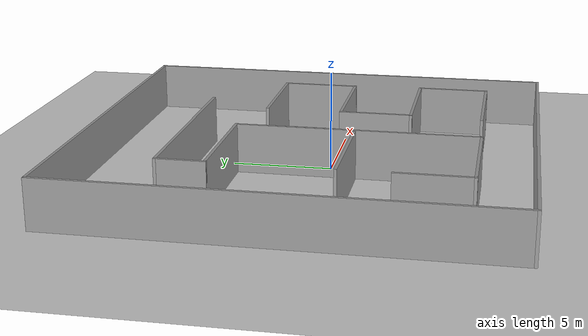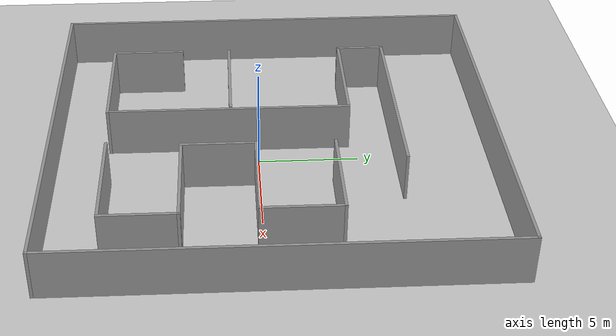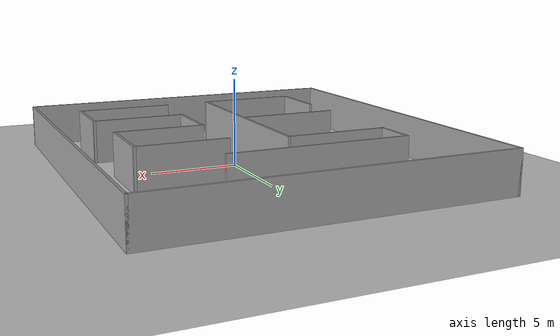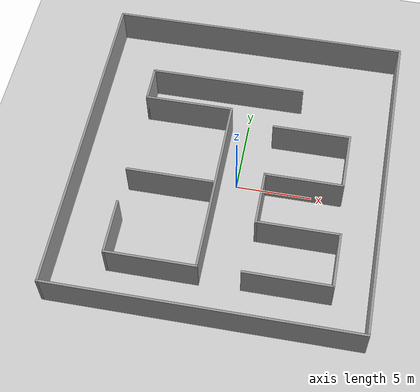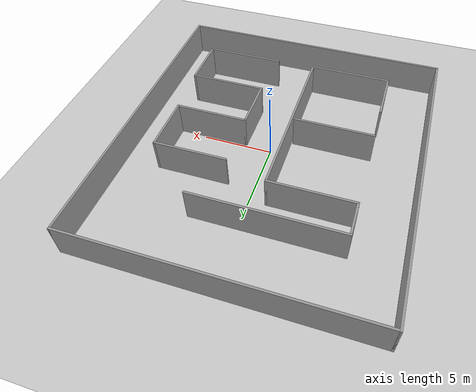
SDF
<sdf version="1.6">
 <world name="default">
  <light name="sun" type="directional">
   <pose>0 0 10 0 -0 0</pose>
   <diffuse>0.8 0.8 0.8 1</diffuse>
   <specular>0.2 0.2 0.2 1</specular>
   <attenuation>
    <range>1000</range>
    <constant>0.9</constant>
    <linear>0.01</linear>
    <quadratic>0.001</quadratic>
   </attenuation>
   <direction>-0.5 0.1 -0.9</direction>
  </light>
  <model name="ground_plane">
   <static>1</static>
   <link name="link">
    <collision name="collision">
     <geometry><plane><normal>0 0 1</normal><size>100 100</size></plane></geometry>
     <surface>
      <contact><collide_bitmask>65535</collide_bitmask></contact>
      <friction><ode><mu>100</mu><mu2>50</mu2></ode></friction>
     </surface>
    </collision>
    <visual name="visual">
     <cast_shadows>0</cast_shadows>
     <geometry><plane><normal>0 0 1</normal><size>100 100</size></plane></geometry>
     <material>
      <script><uri>file://media/materials/scripts/gazebo.material</uri><name>Gazebo/Grey</name></script>
     </material>
    </visual>
   </link>
  </model>
  <gravity>0 0 -9.8</gravity>
  <magnetic_field>6e-06 2.3e-05 -4.2e-05</magnetic_field>
  <atmosphere type="adiabatic"/>
  <physics name="default_physics" default="0" type="ode">
   <max_step_size>0.001</max_step_size>
   <real_time_factor>1</real_time_factor>
   <real_time_update_rate>1000</real_time_update_rate>
  </physics>
  <scene><ambient>0.4 0.4 0.4 1</ambient><background>0.7 0.7 0.7 1</background><shadows>1</shadows></scene>
  <spherical_coordinates>
   <surface_model>EARTH_WGS84</surface_model>
   <latitude_deg>0</latitude_deg>
   <longitude_deg>0</longitude_deg>
   <elevation>0</elevation>
   <heading_deg>0</heading_deg>
  </spherical_coordinates>
  <model name="maze_world">
   <pose>-0.407232 0.743414 0 0 -0 0</pose>
   <link name="Wall_0">
    <collision name="Wall_0_Collision">
     <geometry><box><size>20.25 0.15 2.5</size></box></geometry>
     <pose>0 0 1.25 0 -0 0</pose>
    </collision>
    <visual name="Wall_0_Visual">
     <pose>0 0 1.25 0 -0 0</pose>
     <geometry><box><size>20.25 0.15 2.5</size></box></geometry>
     <material>
      <script><uri>file://media/materials/scripts/gazebo.material</uri><name>Gazebo/Grey</name></script>
      <ambient>1 1 1 1</ambient>
     </material>
     <meta><layer>0</layer></meta>
    </visual>
    <pose>0 10.925 0 0 -0 0</pose>
   </link>
   <link name="Wall_1">
    <collision name="Wall_1_Collision">
     <geometry><box><size>22 0.15 2.5</size></box></geometry>
     <pose>0 0 1.25 0 -0 0</pose>
    </collision>
    <visual name="Wall_1_Visual">
     <pose>0 0 1.25 0 -0 0</pose>
     <geometry><box><size>22 0.15 2.5</size></box></geometry>
     <material>
      <script><uri>file://media/materials/scripts/gazebo.material</uri><name>Gazebo/Grey</name></script>
      <ambient>1 1 1 1</ambient>
     </material>
     <meta><layer>0</layer></meta>
    </visual>
    <pose>10.05 -0 0 0 -0 -1.5708</pose>
   </link>
   <link name="Wall_10">
    <collision name="Wall_10_Collision">
     <geometry><box><size>3.75 0.15 2.5</size></box></geometry>
     <pose>0 0 1.25 0 -0 0</pose>
    </collision>
    <visual name="Wall_10_Visual">
     <pose>0 0 1.25 0 -0 0</pose>
     <geometry><box><size>3.75 0.15 2.5</size></box></geometry>
     <material>
      <script><uri>file://media/materials/scripts/gazebo.material</uri><name>Gazebo/Grey</name></script>
      <ambient>1 1 1 1</ambient>
     </material>
     <meta><layer>0</layer></meta>
    </visual>
    <pose>-6.60131 -6.46511 0 0 -0 1.5708</pose>
   </link>
   <link name="Wall_13">
    <collision name="Wall_13_Collision">
     <geometry><box><size>5.75 0.15 2.5</size></box></geometry>
     <pose>0 0 1.25 0 -0 0</pose>
    </collision>
    <visual name="Wall_13_Visual">
     <pose>0 0 1.25 0 -0 0</pose>
     <geometry><box><size>5.75 0.15 2.5</size></box></geometry>
     <material>
      <script><uri>file://media/materials/scripts/gazebo.material</uri><name>Gazebo/Grey</name></script>
      <ambient>1 1 1 1</ambient>
     </material>
     <meta><layer>0</layer></meta>
    </visual>
    <pose>-3.78043 -2.11582 0 0 -0 0</pose>
   </link>
   <link name="Wall_2">
    <collision name="Wall_2_Collision">
     <geometry><box><size>20.25 0.15 2.5</size></box></geometry>
     <pose>0 0 1.25 0 -0 0</pose>
    </collision>
    <visual name="Wall_2_Visual">
     <pose>0 0 1.25 0 -0 0</pose>
     <geometry><box><size>20.25 0.15 2.5</size></box></geometry>
     <material>
      <script><uri>file://media/materials/scripts/gazebo.material</uri><name>Gazebo/Grey</name></script>
      <ambient>1 1 1 1</ambient>
     </material>
     <meta><layer>0</layer></meta>
    </visual>
    <pose>0 -10.925 0 0 -0 3.14159</pose>
   </link>
   <link name="Wall_21">
    <collision name="Wall_21_Collision">
     <geometry><box><size>5.75 0.15 2.5</size></box></geometry>
     <pose>0 0 1.25 0 -0 0</pose>
    </collision>
    <visual name="Wall_21_Visual">
     <pose>0 0 1.25 0 -0 0</pose>
     <geometry><box><size>5.75 0.15 2.5</size></box></geometry>
     <material>
      <script><uri>file://media/materials/scripts/gazebo.material</uri><name>Gazebo/Grey</name></script>
      <ambient>1 1 1 1</ambient>
     </material>
     <meta><layer>0</layer></meta>
    </visual>
    <pose>4.85612 -8.14423 0 0 -0 0</pose>
   </link>
   <link name="Wall_22">
    <collision name="Wall_22_Collision">
     <geometry><box><size>3.75 0.15 2.5</size></box></geometry>
     <pose>0 0 1.25 0 -0 0</pose>
    </collision>
    <visual name="Wall_22_Visual">
     <pose>0 0 1.25 0 -0 0</pose>
     <geometry><box><size>3.75 0.15 2.5</size></box></geometry>
     <material>
      <script><uri>file://media/materials/scripts/gazebo.material</uri><name>Gazebo/Grey</name></script>
      <ambient>1 1 1 1</ambient>
     </material>
     <meta><layer>0</layer></meta>
    </visual>
    <pose>7.65612 -6.34423 0 0 -0 1.5708</pose>
   </link>
   <link name="Wall_23">
    <collision name="Wall_23_Collision">
     <geometry><box><size>5.5 0.15 2.5</size></box></geometry>
     <pose>0 0 1.25 0 -0 0</pose>
    </collision>
    <visual name="Wall_23_Visual">
     <pose>0 0 1.25 0 -0 0</pose>
     <geometry><box><size>5.5 0.15 2.5</size></box></geometry>
     <material>
      <script><uri>file://media/materials/scripts/gazebo.material</uri><name>Gazebo/Grey</name></script>
      <ambient>1 1 1 1</ambient>
     </material>
     <meta><layer>0</layer></meta>
    </visual>
    <pose>4.98112 -4.54423 0 0 -0 3.14159</pose>
   </link>
   <link name="Wall_24">
    <collision name="Wall_24_Collision">
     <geometry><box><size>3.75 0.15 2.5</size></box></geometry>
     <pose>0 0 1.25 0 -0 0</pose>
    </collision>
    <visual name="Wall_24_Visual">
     <pose>0 0 1.25 0 -0 0</pose>
     <geometry><box><size>3.75 0.15 2.5</size></box></geometry>
     <material>
      <script><uri>file://media/materials/scripts/gazebo.material</uri><name>Gazebo/Grey</name></script>
      <ambient>1 1 1 1</ambient>
     </material>
     <meta><layer>0</layer></meta>
    </visual>
    <pose>2.30612 -2.74423 0 0 -0 1.5708</pose>
   </link>
   <link name="Wall_25">
    <collision name="Wall_25_Collision">
     <geometry><box><size>5.25 0.15 2.5</size></box></geometry>
     <pose>0 0 1.25 0 -0 0</pose>
    </collision>
    <visual name="Wall_25_Visual">
     <pose>0 0 1.25 0 -0 0</pose>
     <geometry><box><size>5.25 0.15 2.5</size></box></geometry>
     <material>
      <script><uri>file://media/materials/scripts/gazebo.material</uri><name>Gazebo/Grey</name></script>
      <ambient>1 1 1 1</ambient>
     </material>
     <meta><layer>0</layer></meta>
    </visual>
    <pose>4.85612 -0.944228 0 0 -0 0</pose>
   </link>
   <link name="Wall_26">
    <collision name="Wall_26_Collision">
     <geometry><box><size>4 0.15 2.5</size></box></geometry>
     <pose>0 0 1.25 0 -0 0</pose>
    </collision>
    <visual name="Wall_26_Visual">
     <pose>0 0 1.25 0 -0 0</pose>
     <geometry><box><size>4 0.15 2.5</size></box></geometry>
     <material>
      <script><uri>file://media/materials/scripts/gazebo.material</uri><name>Gazebo/Grey</name></script>
      <ambient>1 1 1 1</ambient>
     </material>
     <meta><layer>0</layer></meta>
    </visual>
    <pose>7.40612 0.980772 0 0 -0 1.5708</pose>
   </link>
   <link name="Wall_27">
    <collision name="Wall_27_Collision">
     <geometry><box><size>5.25 0.15 2.5</size></box></geometry>
     <pose>0 0 1.25 0 -0 0</pose>
    </collision>
    <visual name="Wall_27_Visual">
     <pose>0 0 1.25 0 -0 0</pose>
     <geometry><box><size>5.25 0.15 2.5</size></box></geometry>
     <material>
      <script><uri>file://media/materials/scripts/gazebo.material</uri><name>Gazebo/Grey</name></script>
      <ambient>1 1 1 1</ambient>
     </material>
     <meta><layer>0</layer></meta>
    </visual>
    <pose>4.85612 2.90577 0 0 -0 3.14159</pose>
   </link>
   <link name="Wall_3">
    <collision name="Wall_3_Collision">
     <geometry><box><size>22 0.15 2.5</size></box></geometry>
     <pose>0 0 1.25 0 -0 0</pose>
    </collision>
    <visual name="Wall_3_Visual">
     <pose>0 0 1.25 0 -0 0</pose>
     <geometry><box><size>22 0.15 2.5</size></box></geometry>
     <material>
      <script><uri>file://media/materials/scripts/gazebo.material</uri><name>Gazebo/Grey</name></script>
      <ambient>1 1 1 1</ambient>
     </material>
     <meta><layer>0</layer></meta>
    </visual>
    <pose>-10.05 -0 0 0 -0 1.5708</pose>
   </link>
   <link name="Wall_5">
    <collision name="Wall_5_Collision">
     <geometry><box><size>10.5 0.15 2.5</size></box></geometry>
     <pose>0 0 1.25 0 -0 0</pose>
    </collision>
    <visual name="Wall_5_Visual">
     <pose>0 0 1.25 0 -0 0</pose>
     <geometry><box><size>10.5 0.15 2.5</size></box></geometry>
     <material>
      <script><uri>file://media/materials/scripts/gazebo.material</uri><name>Gazebo/Grey</name></script>
      <ambient>1 1 1 1</ambient>
     </material>
     <meta><layer>0</layer></meta>
    </visual>
    <pose>-1.42631 6.18489 0 0 -0 3.14159</pose>
   </link>
   <link name="Wall_6">
    <collision name="Wall_6_Collision">
     <geometry><box><size>2.5 0.15 2.5</size></box></geometry>
     <pose>0 0 1.25 0 -0 0</pose>
    </collision>
    <visual name="Wall_6_Visual">
     <pose>0 0 1.25 0 -0 0</pose>
     <geometry><box><size>2.5 0.15 2.5</size></box></geometry>
     <material>
      <script><uri>file://media/materials/scripts/gazebo.material</uri><name>Gazebo/Grey</name></script>
      <ambient>1 1 1 1</ambient>
     </material>
     <meta><layer>0</layer></meta>
    </visual>
    <pose>-6.60131 5.00989 0 0 -0 -1.5708</pose>
   </link>
   <link name="Wall_7">
    <collision name="Wall_7_Collision">
     <geometry><box><size>6 0.15 2.5</size></box></geometry>
     <pose>0 0 1.25 0 -0 0</pose>
    </collision>
    <visual name="Wall_7_Visual">
     <pose>0 0 1.25 0 -0 0</pose>
     <geometry><box><size>6 0.15 2.5</size></box></geometry>
     <material>
      <script><uri>file://media/materials/scripts/gazebo.material</uri><name>Gazebo/Grey</name></script>
      <ambient>1 1 1 1</ambient>
     </material>
     <meta><layer>0</layer></meta>
    </visual>
    <pose>-3.67631 3.83489 0 0 -0 0</pose>
   </link>
   <link name="Wall_8">
    <collision name="Wall_8_Collision">
     <geometry><box><size>12.25 0.15 2.5</size></box></geometry>
     <pose>0 0 1.25 0 -0 0</pose>
    </collision>
    <visual name="Wall_8_Visual">
     <pose>0 0 1.25 0 -0 0</pose>
     <geometry><box><size>12.25 0.15 2.5</size></box></geometry>
     <material>
      <script><uri>file://media/materials/scripts/gazebo.material</uri><name>Gazebo/Grey</name></script>
      <ambient>1 1 1 1</ambient>
     </material>
     <meta><layer>0</layer></meta>
    </visual>
    <pose>-0.751307 -2.21511 0 0 -0 -1.5708</pose>
   </link>
   <link name="Wall_9">
    <collision name="Wall_9_Collision">
     <geometry><box><size>6 0.15 2.5</size></box></geometry>
     <pose>0 0 1.25 0 -0 0</pose>
    </collision>
    <visual name="Wall_9_Visual">
     <pose>0 0 1.25 0 -0 0</pose>
     <geometry><box><size>6 0.15 2.5</size></box></geometry>
     <material>
      <script><uri>file://media/materials/scripts/gazebo.material</uri><name>Gazebo/Grey</name></script>
      <ambient>1 1 1 1</ambient>
     </material>
     <meta><layer>0</layer></meta>
    </visual>
    <pose>-3.67631 -8.26511 0 0 -0 3.14159</pose>
   </link>
   <static>1</static>
  </model>
 </world>
</sdf>
